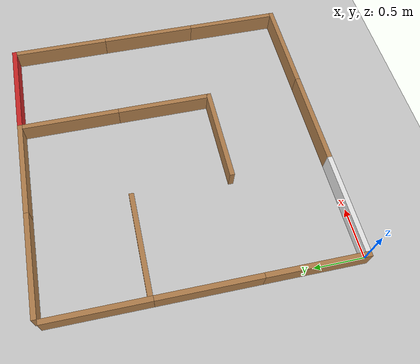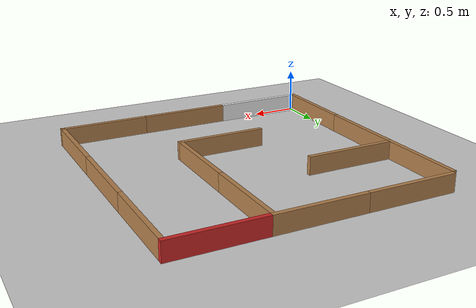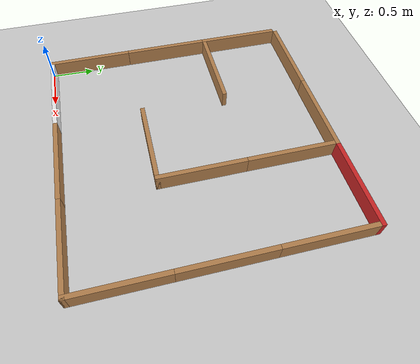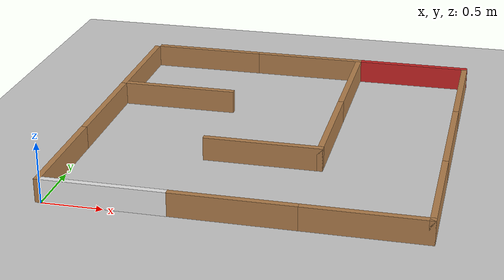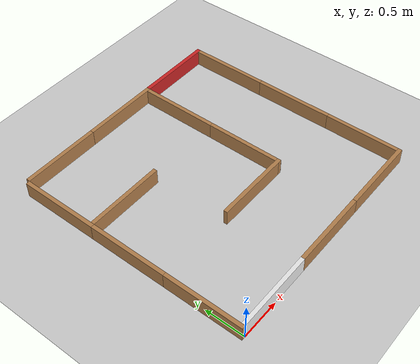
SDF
<sdf version="1.7">
 <world name="world_3_3_box">
  <include><name>sun</name><uri>model://sun</uri></include>
  <include><name>ground</name><uri>model://ground_plane</uri></include>
  <include><name>labyrinth_3_3_box</name><uri>model://labyrinth_3_3_box</uri></include>
  <scene><shadows>0</shadows></scene>
 </world>
</sdf>

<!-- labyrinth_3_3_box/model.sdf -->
<sdf version="1.7">
    <model name="labyrinth">

			<include><name>0_2h</name><uri>model://wall</uri><pose>0 2 0 0 0 0</pose></include>

			<include><name>0_2v</name><uri>model://wall</uri><pose>0 2 0 0 0 1.5707963267948966</pose></include>

			<include><name>0_3h</name><uri>model://wall</uri><pose>0 3 0 0 0 0</pose></include>

			<include><name>0_1v</name><uri>model://wall</uri><pose>0 1 0 0 0 1.5707963267948966</pose></include>

			<include><name>0_0h</name><uri>model://wall_White</uri><pose>0 0 0 0 0 0</pose></include>

			<include><name>0_0v</name><uri>model://wall</uri><pose>0 0 0 0 0 1.5707963267948966</pose></include>

			<include><name>1_3h</name><uri>model://wall</uri><pose>1 3 0 0 0 0</pose></include>

			<include><name>1_1h</name><uri>model://wall</uri><pose>1 1 0 0 0 0</pose></include>

			<include><name>1_0h</name><uri>model://wall</uri><pose>1 0 0 0 0 0</pose></include>

			<include><name>2_2v</name><uri>model://wall</uri><pose>2 2 0 0 0 1.5707963267948966</pose></include>

			<include><name>2_3h</name><uri>model://wall_Red</uri><pose>2 3 0 0 0 0</pose></include>

			<include><name>3_2v</name><uri>model://wall</uri><pose>3 2 0 0 0 1.5707963267948966</pose></include>

			<include><name>2_1v</name><uri>model://wall</uri><pose>2 1 0 0 0 1.5707963267948966</pose></include>

			<include><name>3_1v</name><uri>model://wall</uri><pose>3 1 0 0 0 1.5707963267948966</pose></include>

			<include><name>2_0h</name><uri>model://wall</uri><pose>2 0 0 0 0 0</pose></include>

			<include><name>3_0v</name><uri>model://wall</uri><pose>3 0 0 0 0 1.5707963267948966</pose></include>

	</model>
</sdf>

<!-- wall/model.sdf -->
<sdf version="1.7">
	<model name="wall_Wood">
		<link name="link">
			<visual name="visual">

				<pose>0.5 0.025 0.1 0 0 0</pose>

				<geometry>
					<box>
						<size>1 0.05 0.2</size>
					</box>
				</geometry>

				<material>
					<script>
						<uri>file://media/materials/scripts/gazebo.material</uri>
						<name>Gazebo/Wood</name>
					</script>
				</material>
			</visual>
			<collision name="collision">

				<pose>0.5 0.025 0.1 0 0 0</pose>

				<geometry>
					<box>
						<size>1 0.05 0.2</size>
					</box>
				</geometry>

				<laser_retro>1</laser_retro>
			</collision>
		</link>
	</model>
</sdf>

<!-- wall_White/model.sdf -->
<sdf version="1.7">
	<model name="wall_White">
		<link name="link">
			<visual name="visual">

				<pose>0.5 0.025 0.1 0 0 0</pose>

				<geometry>
					<box>
						<size>1 0.05 0.2</size>
					</box>
				</geometry>

				<material>
					<script>
						<uri>file://media/materials/scripts/gazebo.material</uri>
						<name>Gazebo/White</name>
					</script>
				</material>
			</visual>
			<collision name="collision">

				<pose>0.5 0.025 0.1 0 0 0</pose>

				<geometry>
					<box>
						<size>1 0.05 0.2</size>
					</box>
				</geometry>

				<laser_retro>3</laser_retro>
			</collision>
		</link>
	</model>
</sdf>

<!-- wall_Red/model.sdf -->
<sdf version="1.7">
	<model name="wall_Red">
		<link name="link">
			<visual name="visual">

				<pose>0.5 0.025 0.1 0 0 0</pose>

				<geometry>
					<box>
						<size>1 0.05 0.2</size>
					</box>
				</geometry>

				<material>
					<script>
						<uri>file://media/materials/scripts/gazebo.material</uri>
						<name>Gazebo/Red</name>
					</script>
				</material>
			</visual>
			<collision name="collision">

				<pose>0.5 0.025 0.1 0 0 0</pose>

				<geometry>
					<box>
						<size>1 0.05 0.2</size>
					</box>
				</geometry>

				<laser_retro>2</laser_retro>
			</collision>
			<sensor name='sensor_contact_wall' type='contact'>
				<contact><collision>collision</collision></contact>
			</sensor>
		</link>
		<plugin filename="libTouchPlugin.so" name='plugin_touch'>
			<sensor>sensor_contact_wall</sensor>
			<target>tb3</target>
			<namespace>finish_wall</namespace>
			<time>0.00001</time>
			<enabled>true</enabled>
		</plugin>
	</model>
</sdf>
